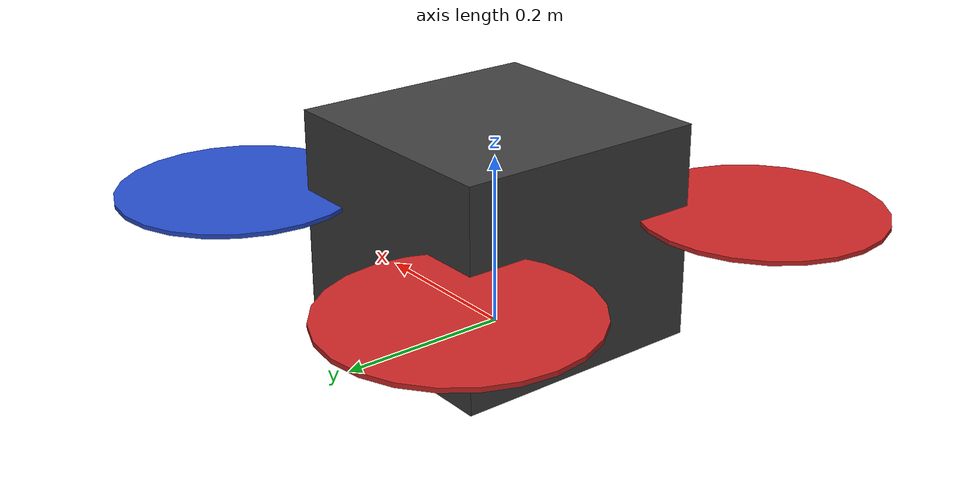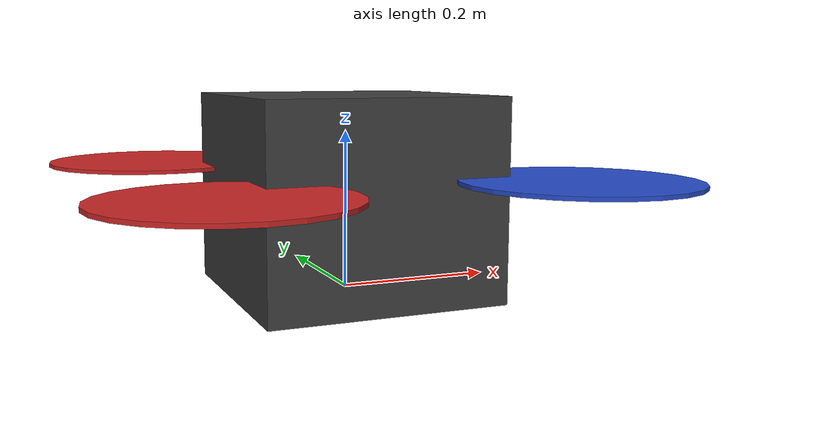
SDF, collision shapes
<?xml version="1.0"?>
<sdf version="1.6">
    <model name="marble_qav500_sensor_config_1">
        <pose>0 0 0.121078 0 0 0</pose>
        <link name="base_link">
            <pose frame="">0 0 0 0 -0 0</pose>
            <inertial>
                <pose frame="">0 0 0 0 -0 0</pose>
                <mass>2.06</mass>
                <inertia>
                    <ixx>0.03566</ixx>
                    <ixy>0</ixy>
                    <ixz>0</ixz>
                    <iyy>0.05535</iyy>
                    <iyz>0</iyz>
                    <izz>0.08475</izz>
                </inertia>
            </inertial>
            <collision name="base_link_inertia_collision">
                <pose frame="">0 0 0 0 -0 0</pose>
                <geometry>
                    <box>
                        <size>0.3 0.3 0.25</size>
                    </box>
                </geometry>
            </collision>
            <visual name="base_link_inertia_visual">
                <pose frame="">0 0 -0.12 0 0 0</pose>
                <material>
                    <diffuse>0.25 0.25 0.25 1</diffuse>
                    <ambient>0.25 0.25 0.25 1</ambient>
                    <specular>0.25 0.25 0.25 1</specular>
                    <emissive>0.25 0.25 0.25 1</emissive>
                </material>
                <geometry>

                    <mesh>
                        <scale>1 1 1</scale>
                        <uri>meshes/qav500.stl</uri>
                    </mesh>
                </geometry>
            </visual>

            <visual name="right_flashlight_visual">
                <pose frame="">0.15 0 -0.034102 0 0 -1.5708</pose>
                <geometry>
                    <mesh>
                        <scale>0.01 0.01 0.01</scale>
                        <uri>meshes/spotlight.dae</uri>
                    </mesh>
                </geometry>
            </visual>
            <light name="right_light_source" type="spot">
                <pose frame="">0.25 0 -0.04 3.1416 -1.5107899999999999 3.1416</pose>
                <attenuation>
                    <range>15</range>
                    <linear>0</linear>
                    <constant>0.1</constant>
                    <quadratic>0.01</quadratic>
                </attenuation>
                <diffuse>0.8 0.8 0.5 1</diffuse>
                <specular>0.8 0.8 0.5 1</specular>
                <spot>
                  <!-- The real vehicle doesn't have a light currently, but for simulation
                    purposes, we added one like the ones on the husky and hd2 -->
                    <inner_angle>2.8</inner_angle>
                    <outer_angle>2.9</outer_angle>
                    <falloff>1</falloff>
                </spot>
                <direction>0 0 -1</direction>
                <cast_shadows>1</cast_shadows>
            </light>

            <sensor name="imu_sensor" type="imu">
                <always_on>1</always_on>
                <update_rate>250</update_rate>
                <imu>
                    <enable_orientation>0</enable_orientation>
                    <angular_velocity>
                        <x>
                            <noise type="gaussian">
                                <mean>0</mean>
                                <stddev>0.009</stddev>
                                <bias_mean>0.00075</bias_mean>
                                <bias_stddev>0.005</bias_stddev>
                                <dynamic_bias_stddev>0.00002</dynamic_bias_stddev>
                                <dynamic_bias_correlation_time>400.0</dynamic_bias_correlation_time>
                                <precision>0.00025</precision>
                            </noise>
                        </x>
                        <y>
                            <noise type="gaussian">
                                <mean>0</mean>
                                <stddev>0.009</stddev>
                                <bias_mean>0.00075</bias_mean>
                                <bias_stddev>0.005</bias_stddev>
                                <dynamic_bias_stddev>0.00002</dynamic_bias_stddev>
                                <dynamic_bias_correlation_time>400.0</dynamic_bias_correlation_time>
                                <precision>0.00025</precision>
                            </noise>
                        </y>
                        <z>
                            <noise type="gaussian">
                                <mean>0</mean>
                                <stddev>0.009</stddev>
                                <bias_mean>0.00075</bias_mean>
                                <bias_stddev>0.005</bias_stddev>
                                <dynamic_bias_stddev>0.00002</dynamic_bias_stddev>
                                <dynamic_bias_correlation_time>400.0</dynamic_bias_correlation_time>
                                <precision>0.00025</precision>
                            </noise>
                        </z>
                    </angular_velocity>
                    <linear_acceleration>
                        <x>
                            <noise type="gaussian">
                                <mean>0</mean>
                                <stddev>0.021</stddev>
                                <bias_mean>0.05</bias_mean>
                                <bias_stddev>0.0075</bias_stddev>
                                <dynamic_bias_stddev>0.000375</dynamic_bias_stddev>
                                <dynamic_bias_correlation_time>175.0</dynamic_bias_correlation_time>
                                <precision>0.005</precision>
                            </noise>
                        </x>
                        <y>
                            <noise type="gaussian">
                                <mean>0</mean>
                                <stddev>0.021</stddev>
                                <bias_mean>0.05</bias_mean>
                                <bias_stddev>0.0075</bias_stddev>
                                <dynamic_bias_stddev>0.000375</dynamic_bias_stddev>
                                <dynamic_bias_correlation_time>175.0</dynamic_bias_correlation_time>
                                <precision>0.005</precision>
                            </noise>
                        </y>
                        <z>
                            <noise type="gaussian">
                                <mean>0</mean>
                                <stddev>0.021</stddev>
                                <bias_mean>0.05</bias_mean>
                                <bias_stddev>0.0075</bias_stddev>
                                <dynamic_bias_stddev>0.000375</dynamic_bias_stddev>
                                <dynamic_bias_correlation_time>175.0</dynamic_bias_correlation_time>
                                <precision>0.005</precision>
                            </noise>
                        </z>
                    </linear_acceleration>
                </imu>
            </sensor>
            <sensor name="air_pressure" type="air_pressure">
                <always_on>1</always_on>
                <update_rate>20</update_rate>
                <air_pressure>
                    <reference_altitude>0</reference_altitude>
                    <noise type="gaussian">
                        <mean>0.00000008</mean>
                    </noise>
                </air_pressure>
            </sensor>
            <sensor name="magnetometer" type="magnetometer">
                <always_on>1</always_on>
                <update_rate>20</update_rate>
                <magnetometer>
                    <x>
                        <noise type="gaussian">
                            <mean>0.000000080</mean>
                            <bias_mean>0.000000400</bias_mean>
                        </noise>
                    </x>
                    <y>
                        <noise type="gaussian">
                            <mean>0.000000080</mean>
                            <bias_mean>0.000000400</bias_mean>
                        </noise>
                    </y>
                    <z>
                        <noise type="gaussian">
                            <mean>0.000000080</mean>
                            <bias_mean>0.000000400</bias_mean>
                        </noise>
                    </z>
                </magnetometer>
            </sensor>

            <visual name="camera_visual">
                <pose>0.27 0 0.03 0 0 0</pose>
                <geometry>
                    <box>
                        <size>0.025 0.09 0.025</size>
                    </box>
                </geometry>
            </visual>
            <!-- Based on Intel realsense D435 (intrinsics and distortion not modeled)-->
            <sensor name="camera_front" type="rgbd_camera">
                <camera name="camera_front">
                    <horizontal_fov>1.5184</horizontal_fov>
                    <lens>
                        <intrinsics>
                            <!-- fx = fy = width / ( 2 * tan (hfov / 2 ) ) -->
                            <fx>337.22195</fx>
                            <fy>337.22195</fy>
                            <!-- cx = ( width + 1 ) / 2 -->
                            <cx>320.5</cx>
                            <!-- cy = ( height + 1 ) / 2 -->
                            <cy>240.5</cy>
                            <s>0</s>
                        </intrinsics>
                    </lens>
                    <distortion>
                        <k1>0.0</k1>
                        <k2>0.0</k2>
                        <k3>0.0</k3>
                        <p1>0.0</p1>
                        <p2>0.0</p2>
                        <center>0.5 0.5</center>
                    </distortion>
                    <image>
                        <width>640</width>
                        <height>480</height>
                        <format>R8G8B8</format>
                    </image>
                    <clip>
                        <near>0.01</near>
                        <far>300</far>
                    </clip>
                    <depth_camera>
                    <clip>
                        <near>0.1</near>
                        <far>10</far>
                    </clip>
                    </depth_camera>
                    <noise>
                        <type>gaussian</type>
                        <mean>0</mean>
                        <stddev>0.007</stddev>
                    </noise>
                </camera>
                <always_on>1</always_on>
                <update_rate>30</update_rate>
                <visualize>0</visualize>
                <pose frame="">0.27 0 0.03 0 -0 0</pose>
            </sensor>
            <visual name="laser_visual">
                <pose>0 0 -0.05 0 0 0</pose>
                <geometry>
                    <cylinder>
                        <radius>0.03</radius>
                        <length>0.1</length>
                    </cylinder>
                </geometry>
            </visual>
            <sensor name="front_laser" type="gpu_ray">
				<!-- Lidar is based on ouster OS1-64 -->
                <pose>0 0 -0.05 0 0 0</pose>
                <update_rate>20</update_rate>
                <lidar>
                    <scan>
                        <horizontal>
                            <samples>1024</samples>
                            <resolution>1</resolution>
                            <min_angle>-3.14159</min_angle>
                            <max_angle>3.14159</max_angle>
                        </horizontal>
                        <vertical>
                            <samples>64</samples>
                            <resolution>1</resolution>
                            <min_angle>-0.2897</min_angle>
                            <max_angle>0.2897</max_angle>
                        </vertical>
                    </scan>
                    <range>
                        <min>0.8</min>
                        <max>120</max>
                        <resolution>0.003</resolution>
                    </range>
                    <noise>
                        <type>gaussian</type>
                        <mean>0</mean>
                        <stddev>0.03</stddev>
                    </noise>
                </lidar>
            </sensor>
            <!-- Modeled from the Pico flexx tof cameras-->
            <sensor name="tof_top" type="depth_camera">
                <pose>0.24 0 0.055 0 -1.57 0</pose>
                <camera name="tof_top">
                    <horizontal_fov>1.0821</horizontal_fov>
                    <lens>
                      <intrinsics>
                        <!-- fx = fy = width / ( 2 * tan (hfov / 2 ) ) -->
                        <fx>186.4</fx>
                        <fy>186.4</fy>
                        <!-- cx = ( width + 1 ) / 2 -->
                        <cx>112.5</cx>
                        <!-- cy = ( height + 1 ) / 2 -->
                        <cy>86</cy>
                        <s>0</s>
                      </intrinsics>
                    </lens>
                    <distortion>
                      <k1>0.0</k1>
                      <k2>0.0</k2>
                      <k3>0.0</k3>
                      <p1>0.0</p1>
                      <p2>0.0</p2>
                      <center>0.5 0.5</center>
                    </distortion>
                    <image>
                        <width>224</width>
                        <height>171</height>
                        <format>R8G8B8</format>
                    </image>
                    <clip>
                        <near>0.1</near>
                        <far>4.0</far>
                    </clip>
                    <depth_camera>
                        <output>depths</output>
                        <clip>
                            <near>0.1</near>
                            <far>4.0</far>
                        </clip>
                    </depth_camera>
                </camera>
                <always_on>1</always_on>
                <update_rate>30</update_rate>
                <visualize>0</visualize>
            </sensor>

            <visual name="tof_top_visual">
                <pose>0.24 0 0.055 0 0 0</pose>
                <geometry>
                    <box>
                        <size>0.017 0.068 0.00735</size>
                    </box>
                </geometry>
            </visual>

            <sensor name="tof_bottom" type="depth_camera">
                <pose>0.24 0 0.00 0 1.57 0</pose>
                <camera name="tof_bottom">
                    <horizontal_fov>1.0821</horizontal_fov>
                    <lens>
                      <intrinsics>
                        <!-- fx = fy = width / ( 2 * tan (hfov / 2 ) ) -->
                        <fx>186.4</fx>
                        <fy>186.4</fy>
                        <!-- cx = ( width + 1 ) / 2 -->
                        <cx>112.5</cx>
                        <!-- cy = ( height + 1 ) / 2 -->
                        <cy>86</cy>
                        <s>0</s>
                      </intrinsics>
                    </lens>
                    <distortion>
                      <k1>0.0</k1>
                      <k2>0.0</k2>
                      <k3>0.0</k3>
                      <p1>0.0</p1>
                      <p2>0.0</p2>
                      <center>0.5 0.5</center>
                    </distortion>
                    <image>
                        <width>224</width>
                        <height>171</height>
                        <format>R8G8B8</format>
                    </image>
                    <clip>
                        <near>0.1</near>
                        <far>4.0</far>
                    </clip>
                    <depth_camera>
                        <output>depths</output>
                        <clip>
                            <near>0.1</near>
                            <far>4.0</far>
                        </clip>
                    </depth_camera>
                </camera>
                <always_on>1</always_on>
                <update_rate>30</update_rate>
                <visualize>0</visualize>
            </sensor>

            <visual name="tof_bottom_visual">
                <pose>0.24 0 0.006 0 0 0</pose>
                <geometry>
                    <box>
                        <size>0.017 0.068 0.00735</size>
                    </box>
                </geometry>
            </visual>

        </link>
        <link name="rotor_0">
            <pose frame="">0.206069 -0.205944 0.028 0 0 0.523599</pose>
            <inertial>
                <pose frame="">0 0 0 0 -0 0</pose>
                <mass>0.005</mass>
                <inertia>
                    <ixx>9.75e-07</ixx>
                    <ixy>0</ixy>
                    <ixz>0</ixz>
                    <iyy>8.13545e-05</iyy>
                    <iyz>0</iyz>
                    <izz>8.22545e-05</izz>
                </inertia>
            </inertial>
            <collision name="rotor_0_collision">
                <pose frame="">0 0 0 0 -0 0</pose>
                <geometry>
                    <cylinder>
                        <length>0.005</length>
                        <radius>0.1397</radius>
                    </cylinder>
                </geometry>
                <surface>
                    <contact>
                        <ode/>
                    </contact>
                    <friction>
                        <ode/>
                    </friction>
                </surface>
            </collision>
            <visual name="rotor_0_visual">
                <pose frame="">0 0 0 0 -0 0</pose>
                <geometry>
                    <mesh>
                        <scale>1 1 1</scale>
                        <uri>meshes/neo11_propeller_ccw.dae</uri>
                    </mesh>
                </geometry>
                <material>
                    <diffuse>1 0 0 1</diffuse>
                    <script>
                        <name>Gazebo/Blue</name>
                        <uri>materials/scripts/gazebo.material</uri>
                    </script>
                </material>
                <cast_shadows>0</cast_shadows>
            </visual>
            <gravity>1</gravity>
            <velocity_decay/>
        </link>
        <joint name="rotor_0_joint" type="revolute">
            <child>rotor_0</child>
            <parent>base_link</parent>
            <axis>
                <xyz>0 0 1</xyz>
                <limit>
                    <lower>-1e+16</lower>
                    <upper>1e+16</upper>
                </limit>
                <dynamics>
                    <spring_reference>0</spring_reference>
                    <spring_stiffness>0</spring_stiffness>
                </dynamics>
                <use_parent_model_frame>1</use_parent_model_frame>
            </axis>
        </joint>
        <link name="rotor_1">
            <pose frame="">-0.206432 0.205944 0.028 0 0 0</pose>
            <inertial>
                <pose frame="">0 0 0 0 -0 0</pose>
                <mass>0.005</mass>
                <inertia>
                    <ixx>9.75e-07</ixx>
                    <ixy>0</ixy>
                    <ixz>0</ixz>
                    <iyy>8.13545e-05</iyy>
                    <iyz>0</iyz>
                    <izz>8.22545e-05</izz>
                </inertia>
            </inertial>
            <collision name="rotor_1_collision">
                <pose frame="">0 0 0 0 -0 0</pose>
                <geometry>
                    <cylinder>
                        <length>0.005</length>
                        <radius>0.1397</radius>
                    </cylinder>
                </geometry>
                <surface>
                    <contact>
                        <ode/>
                    </contact>
                    <friction>
                        <ode/>
                    </friction>
                </surface>
            </collision>
            <visual name="rotor_1_visual">
                <pose frame="">0 0 0 0 -0 0</pose>
                <geometry>
                    <mesh>
                        <scale>1 1 1</scale>
                        <uri>meshes/neo11_propeller_ccw.dae</uri>
                    </mesh>
                </geometry>
                <material>
                    <diffuse>0 0 1 1</diffuse>
                    <script>
                        <name>Gazebo/Red</name>
                        <uri>materials/scripts/gazebo.material</uri>
                    </script>
                </material>
                <cast_shadows>0</cast_shadows>
            </visual>
            <gravity>1</gravity>
            <velocity_decay/>
        </link>
        <joint name="rotor_1_joint" type="revolute">
            <child>rotor_1</child>
            <parent>base_link</parent>
            <axis>
                <xyz>0 0 1</xyz>
                <limit>
                    <lower>-1e+16</lower>
                    <upper>1e+16</upper>
                </limit>
                <dynamics>
                    <spring_reference>0</spring_reference>
                    <spring_stiffness>0</spring_stiffness>
                </dynamics>
                <use_parent_model_frame>1</use_parent_model_frame>
            </axis>
        </joint>
        <link name="rotor_2">
            <pose frame="">0.206432 0.205944 0.028 0 -0 -2.61799</pose>
            <inertial>
                <pose frame="">0 0 0 0 -0 0</pose>
                <mass>0.005</mass>
                <inertia>
                    <ixx>9.75e-07</ixx>
                    <ixy>0</ixy>
                    <ixz>0</ixz>
                    <iyy>8.13545e-05</iyy>
                    <iyz>0</iyz>
                    <izz>8.22545e-05</izz>
                </inertia>
            </inertial>
            <collision name="rotor_2_collision">
                <pose frame="">0 0 0 0 -0 0</pose>
                <geometry>
                    <cylinder>
                        <length>0.005</length>
                        <radius>0.1397</radius>
                    </cylinder>
                </geometry>
                <surface>
                    <contact>
                        <ode/>
                    </contact>
                    <friction>
                        <ode/>
                    </friction>
                </surface>
            </collision>
            <visual name="rotor_2_visual">
                <pose frame="">0 0 0 0 -0 0</pose>
                <geometry>
                    <mesh>
                        <scale>1 1 1</scale>
                        <uri>meshes/neo11_propeller_cw.dae</uri>
                    </mesh>
                </geometry>
                <material>
                    <diffuse>0 0 1 1</diffuse>
                    <script>
                        <name>Gazebo/Blue</name>
                        <uri>materials/scripts/gazebo.material</uri>
                    </script>
                </material>
                <cast_shadows>0</cast_shadows>
            </visual>
            <gravity>1</gravity>
            <velocity_decay/>
        </link>
        <joint name="rotor_2_joint" type="revolute">
            <child>rotor_2</child>
            <parent>base_link</parent>
            <axis>
                <xyz>0 0 1</xyz>
                <limit>
                    <lower>-1e+16</lower>
                    <upper>1e+16</upper>
                </limit>
                <dynamics>
                    <spring_reference>0</spring_reference>
                    <spring_stiffness>0</spring_stiffness>
                </dynamics>
                <use_parent_model_frame>1</use_parent_model_frame>
            </axis>
        </joint>
        <link name="rotor_3">
            <pose frame="">-0.206432 -0.205944 0.028 0 0 -0.523599</pose>
            <inertial>
                <pose frame="">0 0 0 0 -0 0</pose>
                <mass>0.005</mass>
                <inertia>
                    <ixx>9.75e-07</ixx>
                    <ixy>0</ixy>
                    <ixz>0</ixz>
                    <iyy>8.13545e-05</iyy>
                    <iyz>0</iyz>
                    <izz>8.22545e-05</izz>
                </inertia>
            </inertial>
            <collision name="rotor_3_collision">
                <pose frame="">0 0 0 0 -0 0</pose>
                <geometry>
                    <cylinder>
                        <length>0.005</length>
                        <radius>0.1397</radius>
                    </cylinder>
                </geometry>
                <surface>
                    <contact>
                        <ode/>
                    </contact>
                    <friction>
                        <ode/>
                    </friction>
                </surface>
            </collision>
            <visual name="rotor_3_visual">
                <pose frame="">0 0 0 0 -0 0</pose>
                <geometry>
                    <mesh>
                        <scale>1 1 1</scale>
                        <uri>meshes/neo11_propeller_cw.dae</uri>
                    </mesh>
                </geometry>
                <material>
                    <diffuse>1 0 0 1</diffuse>
                    <script>
                        <name>Gazebo/Red</name>
                        <uri>media/materials/scripts/gazebo.material</uri>
                    </script>
                </material>
                <cast_shadows>0</cast_shadows>
            </visual>
            <gravity>1</gravity>
            <velocity_decay/>
        </link>
        <joint name="rotor_3_joint" type="revolute">
            <child>rotor_3</child>
            <parent>base_link</parent>
            <axis>
                <xyz>0.043578 0.075479 0.996195</xyz>
                <limit>
                    <lower>-1e+16</lower>
                    <upper>1e+16</upper>
                </limit>
                <dynamics>
                    <spring_reference>0</spring_reference>
                    <spring_stiffness>0</spring_stiffness>
                </dynamics>
                <use_parent_model_frame>1</use_parent_model_frame>
            </axis>
        </joint>
    </model>
</sdf>
